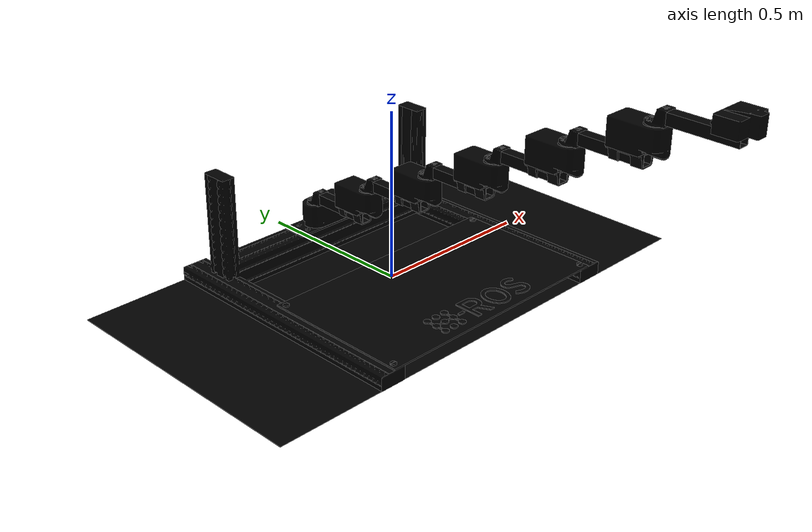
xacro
<?xml version="1.0"?>
<robot name="scara_e1_3joints" xmlns:xacro="http://ros.org/wiki/xacro">

  <link name="world">
     <visual>
       <geometry>
         <box size="1.5 0.8 0.001" />
       </geometry>
       <origin rpy="0 0 0" xyz="0 0 0"/>
       <material name="Gazebo/Black">
       </material>
     </visual>
  </link>

  <link name="scara_e1_base_link">
    <inertial>
      <origin xyz="8.625E-08 -4.6583E-06 0.03145" rpy="0 0 0" />
      <mass value="0.22652" />
      <inertia ixx="0.00020005" ixy="-4.2442E-10" ixz="-2.9069E-10" iyy="0.00017832" iyz="-3.4402E-08" izz="0.00013478" />
    </inertial>
    <visual>
      <origin xyz="0 0 0" rpy="0 0 0" />
      <geometry>
        <mesh scale="0.001 0.001 0.001" filename="package://scara_e1_description/meshes/scara_e1_base_link.stl" />
      </geometry>
      <material name="Gazebo/Grey">
        <color rgba="0. 0. 0. 1" />
      </material>
    </visual>
    <collision>
      <origin xyz="0 0 0" rpy="0 0 0" />
      <geometry>
        <mesh scale="0.001 0.001 0.001" filename="package://scara_e1_description/meshes/scara_e1_base_link.stl" />
      </geometry>
    </collision>
  </link>

  <link name="scara_e1_metraquilato">
    <inertial>
      <origin xyz="8.625E-08 -4.6583E-06 0.03145" rpy="0 0 0" />
      <mass value="0.22652" />
      <inertia ixx="0.00020005" ixy="-4.2442E-10" ixz="-2.9069E-10" iyy="0.00017832" iyz="-3.4402E-08" izz="0.00013478" />
    </inertial>
    <visual>
      <origin xyz="0 0 0" rpy="0 0 0" />
      <geometry>
        <mesh scale="0.001 0.001 0.001" filename="package://scara_e1_description/meshes/scara_e1_metacrilato.stl" />
      </geometry>
      <material name="Gazebo/Black">
        <color rgba="0. 0. 0. 1" />
      </material>
    </visual>
    <collision>
      <origin xyz="0 0 0" rpy="0 0 0" />
      <geometry>
        <mesh scale="0.001 0.001 0.001" filename="package://scara_e1_description/meshes/scara_e1_metacrilato.stl" />
      </geometry>
    </collision>
  </link>

  <link name="scara_e1_hros_logo">
    <inertial>
      <origin xyz="8.625E-08 -4.6583E-06 0.03145" rpy="0 0 0" />
      <mass value="0.22652" />
      <inertia ixx="0.00020005" ixy="-4.2442E-10" ixz="-2.9069E-10" iyy="0.00017832" iyz="-3.4402E-08" izz="0.00013478" />
    </inertial>
    <visual>
      <origin xyz="0 0 0" rpy="0 0 0" />
      <geometry>
        <mesh scale="0.001 0.001 0.001" filename="package://scara_e1_description/meshes/scara_e1_hros_logo.stl" />
      </geometry>
      <material name="Gazebo/Black">
        <color rgba="0. 0. 0. 1" />
      </material>
    </visual>
    <collision>
      <origin xyz="0 0 0" rpy="0 0 0" />
      <geometry>
        <mesh scale="0.001 0.001 0.001" filename="package://scara_e1_description/meshes/scara_e1_hros_logo.stl" />
      </geometry>
    </collision>
  </link>

  <link name="scara_e1_base_motor">
    <inertial>
      <origin xyz="8.625E-08 -4.6583E-06 0.03145" rpy="0 0 0" />
      <mass value="0.22652" />
      <inertia ixx="0.00020005" ixy="-4.2442E-10" ixz="-2.9069E-10" iyy="0.00017832" iyz="-3.4402E-08" izz="0.00013478" />
    </inertial>
    <visual>
      <origin xyz="0 0 0" rpy="0 0 0" />
      <geometry>
        <mesh scale="0.001 0.001 0.001" filename="package://scara_e1_description/meshes/scara_e1_base_motor.stl" />
      </geometry>
      <material name="Gazebo/Grey">
        <color rgba="0. 0. 0. 1" />
      </material>
    </visual>
    <collision>
      <origin xyz="0 0 0" rpy="0 0 0" />
      <geometry>
        <mesh scale="0.001 0.001 0.001" filename="package://scara_e1_description/meshes/scara_e1_base_motor.stl" />
      </geometry>
    </collision>
  </link>

  <link name="scara_e1_motor1">
    <inertial>
      <origin xyz="8.625E-08 -4.6583E-06 0.03145" rpy="0 0 0" />
      <mass value="0.22652" />
      <inertia ixx="0.00020005" ixy="-4.2442E-10" ixz="-2.9069E-10" iyy="0.00017832" iyz="-3.4402E-08" izz="0.00013478" />
    </inertial>
    <visual>
      <origin xyz="0 0 0" rpy="0 0 0" />
      <geometry>
        <mesh scale="0.001 0.001 0.001" filename="package://scara_e1_description/meshes/HEBImotor_case.stl" />
      </geometry>
      <material name="Gazebo/Red">
        <color rgba="0. 0. 0. 1" />
      </material>
    </visual>
    <collision>
      <origin xyz="0 0 0" rpy="0 0 0" />
      <geometry>
        <mesh scale="0.001 0.001 0.001" filename="package://scara_e1_description/meshes/HEBImotor_case.stl" />
      </geometry>
    </collision>
  </link>

  <link name="scara_e1_motor1_inside">
    <inertial>
      <origin xyz="8.625E-08 -4.6583E-06 0.03145" rpy="0 0 0" />
      <mass value="0.22652" />
      <inertia ixx="0.00020005" ixy="-4.2442E-10" ixz="-2.9069E-10" iyy="0.00017832" iyz="-3.4402E-08" izz="0.00013478" />
    </inertial>
    <visual>
      <origin xyz="0 0 0" rpy="0 0 0" />
      <geometry>
        <mesh scale="0.001 0.001 0.001" filename="package://scara_e1_description/meshes/HEBImotor.stl" />
      </geometry>
      <material name="Gazebo/Red">
        <color rgba="0. 0. 0. 1" />
      </material>
    </visual>
    <collision>
      <origin xyz="0 0 0" rpy="0 0 0" />
      <geometry>
        <mesh scale="0.001 0.001 0.001" filename="package://scara_e1_description/meshes/HEBImotor.stl" />
      </geometry>
    </collision>
  </link>

  <link name="scara_e1_motor1_support">
    <inertial>
      <origin xyz="8.625E-08 -4.6583E-06 0.03145" rpy="0 0 0" />
      <mass value="0.22652" />
      <inertia ixx="0.00020005" ixy="-4.2442E-10" ixz="-2.9069E-10" iyy="0.00017832" iyz="-3.4402E-08" izz="0.00013478" />
    </inertial>
    <visual>
      <origin xyz="0 0 0" rpy="0 0 0" />
      <geometry>
        <mesh scale="0.001 0.001 0.001" filename="package://scara_e1_description/meshes/HEBImotor_support.stl" />
      </geometry>
      <material name="Gazebo/Grey">
        <color rgba="0. 0. 0. 1" />
      </material>
    </visual>
    <collision>
      <origin xyz="0 0 0" rpy="0 0 0" />
      <geometry>
        <mesh scale="0.001 0.001 0.001" filename="package://scara_e1_description/meshes/HEBImotor_support.stl" />
      </geometry>
    </collision>
  </link>

  <link name="scara_e1_bar1">
    <inertial>
      <origin xyz="8.625E-08 -4.6583E-06 0.03145" rpy="0 0 0" />
      <mass value="0.22652" />
      <inertia ixx="0.00020005" ixy="-4.2442E-10" ixz="-2.9069E-10" iyy="0.00017832" iyz="-3.4402E-08" izz="0.00013478" />
    </inertial>
    <visual>
      <origin xyz="0 0 0" rpy="0 0 0" />
      <geometry>
        <mesh scale="0.001 0.001 0.001" filename="package://scara_e1_description/meshes/scara_bar.stl" />
      </geometry>
      <material name="Gazebo/White">
        <color rgba="0. 0. 0. 1" />
      </material>
    </visual>
    <collision>
      <origin xyz="0 0 0" rpy="0 0 0" />
      <geometry>
        <mesh scale="0.001 0.001 0.001" filename="package://scara_e1_description/meshes/scara_bar.stl" />
      </geometry>
    </collision>
  </link>

  <link name="scara_e1_fixbar1">
    <inertial>
      <origin xyz="8.625E-08 -4.6583E-06 0.03145" rpy="0 0 0" />
      <mass value="0.22652" />
      <inertia ixx="0.00020005" ixy="-4.2442E-10" ixz="-2.9069E-10" iyy="0.00017832" iyz="-3.4402E-08" izz="0.00013478" />
    </inertial>
    <visual>
      <origin xyz="0 0 0" rpy="0 0 0" />
      <geometry>
        <mesh scale="0.001 0.001 0.001" filename="package://scara_e1_description/meshes/HEBImotor_fixbar.stl" />
      </geometry>
      <material name="Gazebo/Grey">
        <color rgba="0. 0. 0. 1" />
      </material>
    </visual>
    <collision>
      <origin xyz="0 0 0" rpy="0 0 0" />
      <geometry>
        <mesh scale="0.001 0.001 0.001" filename="package://scara_e1_description/meshes/HEBImotor_fixbar.stl" />
      </geometry>
    </collision>
  </link>

  <link name="scara_e1_motor2">
    <inertial>
      <origin xyz="8.625E-08 -4.6583E-06 0.03145" rpy="0 0 0" />
      <mass value="0.22652" />
      <inertia ixx="0.00020005" ixy="-4.2442E-10" ixz="-2.9069E-10" iyy="0.00017832" iyz="-3.4402E-08" izz="0.00013478" />
    </inertial>
    <visual>
      <origin xyz="0 0 0" rpy="0 0 0" />
      <geometry>
        <mesh scale="0.001 0.001 0.001" filename="package://scara_e1_description/meshes/HEBImotor_case.stl" />
      </geometry>
      <material name="Gazebo/Red">
        <color rgba="0. 0. 0. 1" />
      </material>
    </visual>
    <collision>
      <origin xyz="0 0 0" rpy="0 0 0" />
      <geometry>
        <mesh scale="0.001 0.001 0.001" filename="package://scara_e1_description/meshes/HEBImotor_case.stl" />
      </geometry>
    </collision>
  </link>

  <link name="scara_e1_motor2_inside">
    <inertial>
      <origin xyz="8.625E-08 -4.6583E-06 0.03145" rpy="0 0 0" />
      <mass value="0.22652" />
      <inertia ixx="0.00020005" ixy="-4.2442E-10" ixz="-2.9069E-10" iyy="0.00017832" iyz="-3.4402E-08" izz="0.00013478" />
    </inertial>
    <visual>
      <origin xyz="0 0 0" rpy="0 0 0" />
      <geometry>
        <mesh scale="0.001 0.001 0.001" filename="package://scara_e1_description/meshes/HEBImotor.stl" />
      </geometry>
      <material name="Gazebo/Red">
        <color rgba="0. 0. 0. 1" />
      </material>
    </visual>
    <collision>
      <origin xyz="0 0 0" rpy="0 0 0" />
      <geometry>
        <mesh scale="0.001 0.001 0.001" filename="package://scara_e1_description/meshes/HEBImotor.stl" />
      </geometry>
    </collision>
  </link>

  <link name="scara_e1_motor2_support">
    <inertial>
      <origin xyz="8.625E-08 -4.6583E-06 0.03145" rpy="0 0 0" />
      <mass value="0.22652" />
      <inertia ixx="0.00020005" ixy="-4.2442E-10" ixz="-2.9069E-10" iyy="0.00017832" iyz="-3.4402E-08" izz="0.00013478" />
    </inertial>
    <visual>
      <origin xyz="0 0 0" rpy="0 0 0" />
      <geometry>
        <mesh scale="0.001 0.001 0.001" filename="package://scara_e1_description/meshes/HEBImotor_support.stl" />
      </geometry>
      <material name="Gazebo/Grey">
        <color rgba="0. 0. 0. 1" />
      </material>
    </visual>
    <collision>
      <origin xyz="0 0 0" rpy="0 0 0" />
      <geometry>
        <mesh scale="0.001 0.001 0.001" filename="package://scara_e1_description/meshes/HEBImotor_support.stl" />
      </geometry>
    </collision>
  </link>

  <link name="scara_e1_bar2">
    <inertial>
      <origin xyz="8.625E-08 -4.6583E-06 0.03145" rpy="0 0 0" />
      <mass value="0.22652" />
      <inertia ixx="0.00020005" ixy="-4.2442E-10" ixz="-2.9069E-10" iyy="0.00017832" iyz="-3.4402E-08" izz="0.00013478" />
    </inertial>
    <visual>
      <origin xyz="0 0 0" rpy="0 0 0" />
      <geometry>
        <mesh scale="0.001 0.001 0.001" filename="package://scara_e1_description/meshes/scara_bar.stl" />
      </geometry>
      <material name="Gazebo/White">
        <color rgba="0. 0. 0. 1" />
      </material>
    </visual>
    <collision>
      <origin xyz="0 0 0" rpy="0 0 0" />
      <geometry>
        <mesh scale="0.001 0.001 0.001" filename="package://scara_e1_description/meshes/scara_bar.stl" />
      </geometry>
    </collision>
  </link>

  <link name="scara_e1_fixbar2">
    <inertial>
      <origin xyz="8.625E-08 -4.6583E-06 0.03145" rpy="0 0 0" />
      <mass value="0.22652" />
      <inertia ixx="0.00020005" ixy="-4.2442E-10" ixz="-2.9069E-10" iyy="0.00017832" iyz="-3.4402E-08" izz="0.00013478" />
    </inertial>
    <visual>
      <origin xyz="0 0 0" rpy="0 0 0" />
      <geometry>
        <mesh scale="0.001 0.001 0.001" filename="package://scara_e1_description/meshes/HEBImotor_fixbar.stl" />
      </geometry>
      <material name="Gazebo/Grey">
        <color rgba="0. 0. 0. 1" />
      </material>
    </visual>
    <collision>
      <origin xyz="0 0 0" rpy="0 0 0" />
      <geometry>
        <mesh scale="0.001 0.001 0.001" filename="package://scara_e1_description/meshes/HEBImotor_fixbar.stl" />
      </geometry>
    </collision>
  </link>

  <link name="scara_e1_motor3">
    <inertial>
      <origin xyz="8.625E-08 -4.6583E-06 0.03145" rpy="0 0 0" />
      <mass value="0.22652" />
      <inertia ixx="0.00020005" ixy="-4.2442E-10" ixz="-2.9069E-10" iyy="0.00017832" iyz="-3.4402E-08" izz="0.00013478" />
    </inertial>
    <visual>
      <origin xyz="0 0 0" rpy="0 0 0" />
      <geometry>
        <mesh scale="0.001 0.001 0.001" filename="package://scara_e1_description/meshes/HEBImotor_case.stl" />
      </geometry>
      <material name="Gazebo/Red">
        <color rgba="0. 0. 0. 1" />
      </material>
    </visual>
    <collision>
      <origin xyz="0 0 0" rpy="0 0 0" />
      <geometry>
        <mesh scale="0.001 0.001 0.001" filename="package://scara_e1_description/meshes/HEBImotor_case.stl" />
      </geometry>
    </collision>
  </link>

  <link name="scara_e1_motor3_inside">
    <inertial>
      <origin xyz="8.625E-08 -4.6583E-06 0.03145" rpy="0 0 0" />
      <mass value="0.22652" />
      <inertia ixx="0.00020005" ixy="-4.2442E-10" ixz="-2.9069E-10" iyy="0.00017832" iyz="-3.4402E-08" izz="0.00013478" />
    </inertial>
    <visual>
      <origin xyz="0 0 0" rpy="0 0 0" />
      <geometry>
        <mesh scale="0.001 0.001 0.001" filename="package://scara_e1_description/meshes/HEBImotor.stl" />
      </geometry>
      <material name="Gazebo/Red">
        <color rgba="0. 0. 0. 1" />
      </material>
    </visual>
    <collision>
      <origin xyz="0 0 0" rpy="0 0 0" />
      <geometry>
        <mesh scale="0.001 0.001 0.001" filename="package://scara_e1_description/meshes/HEBImotor.stl" />
      </geometry>
    </collision>
  </link>

  <link name="scara_e1_motor3_support">
    <inertial>
      <origin xyz="8.625E-08 -4.6583E-06 0.03145" rpy="0 0 0" />
      <mass value="0.22652" />
      <inertia ixx="0.00020005" ixy="-4.2442E-10" ixz="-2.9069E-10" iyy="0.00017832" iyz="-3.4402E-08" izz="0.00013478" />
    </inertial>
    <visual>
      <origin xyz="0 0 0" rpy="0 0 0" />
      <geometry>
        <mesh scale="0.001 0.001 0.001" filename="package://scara_e1_description/meshes/HEBImotor_support.stl" />
      </geometry>
      <material name="Gazebo/Grey">
        <color rgba="0. 0. 0. 1" />
      </material>
    </visual>
    <collision>
      <origin xyz="0 0 0" rpy="0 0 0" />
      <geometry>
        <mesh scale="0.001 0.001 0.001" filename="package://scara_e1_description/meshes/HEBImotor_support.stl" />
      </geometry>
    </collision>
  </link>

  <link name="scara_e1_bar3">
    <inertial>
      <origin xyz="8.625E-08 -4.6583E-06 0.03145" rpy="0 0 0" />
      <mass value="0.22652" />
      <inertia ixx="0.00020005" ixy="-4.2442E-10" ixz="-2.9069E-10" iyy="0.00017832" iyz="-3.4402E-08" izz="0.00013478" />
    </inertial>
    <visual>
      <origin xyz="0 0 0" rpy="0 0 0" />
      <geometry>
        <mesh scale="0.001 0.001 0.001" filename="package://scara_e1_description/meshes/scara_bar.stl" />
      </geometry>
      <material name="Gazebo/White">
        <color rgba="0. 0. 0. 1" />
      </material>
    </visual>
    <collision>
      <origin xyz="0 0 0" rpy="0 0 0" />
      <geometry>
        <mesh scale="0.001 0.001 0.001" filename="package://scara_e1_description/meshes/scara_bar.stl" />
      </geometry>
    </collision>
  </link>

  <link name="scara_e1_fixbar3">
    <inertial>
      <origin xyz="8.625E-08 -4.6583E-06 0.03145" rpy="0 0 0" />
      <mass value="0.22652" />
      <inertia ixx="0.00020005" ixy="-4.2442E-10" ixz="-2.9069E-10" iyy="0.00017832" iyz="-3.4402E-08" izz="0.00013478" />
    </inertial>
    <visual>
      <origin xyz="0 0 0" rpy="0 0 0" />
      <geometry>
        <mesh scale="0.001 0.001 0.001" filename="package://scara_e1_description/meshes/HEBImotor_fixbar.stl" />
      </geometry>
      <material name="Gazebo/Grey">
        <color rgba="0. 0. 0. 1" />
      </material>
    </visual>
    <collision>
      <origin xyz="0 0 0" rpy="0 0 0" />
      <geometry>
        <mesh scale="0.001 0.001 0.001" filename="package://scara_e1_description/meshes/HEBImotor_fixbar.stl" />
      </geometry>
    </collision>
  </link>

  <link name="scara_e1_motor4">
    <inertial>
      <origin xyz="8.625E-08 -4.6583E-06 0.03145" rpy="0 0 0" />
      <mass value="0.22652" />
      <inertia ixx="0.00020005" ixy="-4.2442E-10" ixz="-2.9069E-10" iyy="0.00017832" iyz="-3.4402E-08" izz="0.00013478" />
    </inertial>
    <visual>
      <origin xyz="0 0 0" rpy="0 0 0" />
      <geometry>
        <mesh scale="0.001 0.001 0.001" filename="package://scara_e1_description/meshes/HEBImotor_case.stl" />
      </geometry>
      <material name="Gazebo/Red">
        <color rgba="0. 0. 0. 1" />
      </material>
    </visual>
    <collision>
      <origin xyz="0 0 0" rpy="0 0 0" />
      <geometry>
        <mesh scale="0.001 0.001 0.001" filename="package://scara_e1_description/meshes/HEBImotor_case.stl" />
      </geometry>
    </collision>
  </link>

  <link name="scara_e1_motor4_inside">
    <inertial>
      <origin xyz="8.625E-08 -4.6583E-06 0.03145" rpy="0 0 0" />
      <mass value="0.22652" />
      <inertia ixx="0.00020005" ixy="-4.2442E-10" ixz="-2.9069E-10" iyy="0.00017832" iyz="-3.4402E-08" izz="0.00013478" />
    </inertial>
    <visual>
      <origin xyz="0 0 0" rpy="0 0 0" />
      <geometry>
        <mesh scale="0.001 0.001 0.001" filename="package://scara_e1_description/meshes/HEBImotor.stl" />
      </geometry>
      <material name="Gazebo/Red">
        <color rgba="0. 0. 0. 1" />
      </material>
    </visual>
    <collision>
      <origin xyz="0 0 0" rpy="0 0 0" />
      <geometry>
        <mesh scale="0.001 0.001 0.001" filename="package://scara_e1_description/meshes/HEBImotor.stl" />
      </geometry>
    </collision>
  </link>

  <link name="scara_e1_motor4_support">
    <inertial>
      <origin xyz="8.625E-08 -4.6583E-06 0.03145" rpy="0 0 0" />
      <mass value="0.22652" />
      <inertia ixx="0.00020005" ixy="-4.2442E-10" ixz="-2.9069E-10" iyy="0.00017832" iyz="-3.4402E-08" izz="0.00013478" />
    </inertial>
    <visual>
      <origin xyz="0 0 0" rpy="0 0 0" />
      <geometry>
        <mesh scale="0.001 0.001 0.001" filename="package://scara_e1_description/meshes/HEBImotor_support.stl" />
      </geometry>
      <material name="Gazebo/Grey">
        <color rgba="0. 0. 0. 1" />
      </material>
    </visual>
    <collision>
      <origin xyz="0 0 0" rpy="0 0 0" />
      <geometry>
        <mesh scale="0.001 0.001 0.001" filename="package://scara_e1_description/meshes/HEBImotor_support.stl" />
      </geometry>
    </collision>
  </link>

  <link name="scara_e1_bar4">
    <inertial>
      <origin xyz="8.625E-08 -4.6583E-06 0.03145" rpy="0 0 0" />
      <mass value="0.22652" />
      <inertia ixx="0.00020005" ixy="-4.2442E-10" ixz="-2.9069E-10" iyy="0.00017832" iyz="-3.4402E-08" izz="0.00013478" />
    </inertial>
    <visual>
      <origin xyz="0 0 0" rpy="0 0 0" />
      <geometry>
        <mesh scale="0.001 0.001 0.001" filename="package://scara_e1_description/meshes/scara_bar.stl" />
      </geometry>
      <material name="Gazebo/White">
        <color rgba="0. 0. 0. 1" />
      </material>
    </visual>
    <collision>
      <origin xyz="0 0 0" rpy="0 0 0" />
      <geometry>
        <mesh scale="0.001 0.001 0.001" filename="package://scara_e1_description/meshes/scara_bar.stl" />
      </geometry>
    </collision>
  </link>

  <link name="scara_e1_fixbar4">
    <inertial>
      <origin xyz="8.625E-08 -4.6583E-06 0.03145" rpy="0 0 0" />
      <mass value="0.22652" />
      <inertia ixx="0.00020005" ixy="-4.2442E-10" ixz="-2.9069E-10" iyy="0.00017832" iyz="-3.4402E-08" izz="0.00013478" />
    </inertial>
    <visual>
      <origin xyz="0 0 0" rpy="0 0 0" />
      <geometry>
        <mesh scale="0.001 0.001 0.001" filename="package://scara_e1_description/meshes/HEBImotor_fixbar.stl" />
      </geometry>
      <material name="Gazebo/Grey">
        <color rgba="0. 0. 0. 1" />
      </material>
    </visual>
    <collision>
      <origin xyz="0 0 0" rpy="0 0 0" />
      <geometry>
        <mesh scale="0.001 0.001 0.001" filename="package://scara_e1_description/meshes/HEBImotor_fixbar.stl" />
      </geometry>
    </collision>
  </link>

  <link name="scara_e1_motor5">
    <inertial>
      <origin xyz="8.625E-08 -4.6583E-06 0.03145" rpy="0 0 0" />
      <mass value="0.22652" />
      <inertia ixx="0.00020005" ixy="-4.2442E-10" ixz="-2.9069E-10" iyy="0.00017832" iyz="-3.4402E-08" izz="0.00013478" />
    </inertial>
    <visual>
      <origin xyz="0 0 0" rpy="0 0 0" />
      <geometry>
        <mesh scale="0.001 0.001 0.001" filename="package://scara_e1_description/meshes/HEBImotor_case.stl" />
      </geometry>
      <material name="Gazebo/Red">
        <color rgba="0. 0. 0. 1" />
      </material>
    </visual>
    <collision>
      <origin xyz="0 0 0" rpy="0 0 0" />
      <geometry>
        <mesh scale="0.001 0.001 0.001" filename="package://scara_e1_description/meshes/HEBImotor_case.stl" />
      </geometry>
    </collision>
  </link>

  <link name="scara_e1_motor5_inside">
    <inertial>
      <origin xyz="8.625E-08 -4.6583E-06 0.03145" rpy="0 0 0" />
      <mass value="0.22652" />
      <inertia ixx="0.00020005" ixy="-4.2442E-10" ixz="-2.9069E-10" iyy="0.00017832" iyz="-3.4402E-08" izz="0.00013478" />
    </inertial>
    <visual>
      <origin xyz="0 0 0" rpy="0 0 0" />
      <geometry>
        <mesh scale="0.001 0.001 0.001" filename="package://scara_e1_description/meshes/HEBImotor.stl" />
      </geometry>
      <material name="Gazebo/Red">
        <color rgba="0. 0. 0. 1" />
      </material>
    </visual>
    <collision>
      <origin xyz="0 0 0" rpy="0 0 0" />
      <geometry>
        <mesh scale="0.001 0.001 0.001" filename="package://scara_e1_description/meshes/HEBImotor.stl" />
      </geometry>
    </collision>
  </link>

  <link name="scara_e1_motor5_support">
    <inertial>
      <origin xyz="8.625E-08 -4.6583E-06 0.03145" rpy="0 0 0" />
      <mass value="0.22652" />
      <inertia ixx="0.00020005" ixy="-4.2442E-10" ixz="-2.9069E-10" iyy="0.00017832" iyz="-3.4402E-08" izz="0.00013478" />
    </inertial>
    <visual>
      <origin xyz="0 0 0" rpy="0 0 0" />
      <geometry>
        <mesh scale="0.001 0.001 0.001" filename="package://scara_e1_description/meshes/HEBImotor_support.stl" />
      </geometry>
      <material name="Gazebo/Grey">
        <color rgba="0. 0. 0. 1" />
      </material>
    </visual>
    <collision>
      <origin xyz="0 0 0" rpy="0 0 0" />
      <geometry>
        <mesh scale="0.001 0.001 0.001" filename="package://scara_e1_description/meshes/HEBImotor_support.stl" />
      </geometry>
    </collision>
  </link>

  <link name="scara_e1_bar5">
    <inertial>
      <origin xyz="8.625E-08 -4.6583E-06 0.03145" rpy="0 0 0" />
      <mass value="0.22652" />
      <inertia ixx="0.00020005" ixy="-4.2442E-10" ixz="-2.9069E-10" iyy="0.00017832" iyz="-3.4402E-08" izz="0.00013478" />
    </inertial>
    <visual>
      <origin xyz="0 0 0" rpy="0 0 0" />
      <geometry>
        <mesh scale="0.001 0.001 0.001" filename="package://scara_e1_description/meshes/scara_bar.stl" />
      </geometry>
      <material name="Gazebo/White">
        <color rgba="0. 0. 0. 1" />
      </material>
    </visual>
    <collision>
      <origin xyz="0 0 0" rpy="0 0 0" />
      <geometry>
        <mesh scale="0.001 0.001 0.001" filename="package://scara_e1_description/meshes/scara_bar.stl" />
      </geometry>
    </collision>
  </link>

  <link name="scara_e1_fixbar5">
    <inertial>
      <origin xyz="8.625E-08 -4.6583E-06 0.03145" rpy="0 0 0" />
      <mass value="0.22652" />
      <inertia ixx="0.00020005" ixy="-4.2442E-10" ixz="-2.9069E-10" iyy="0.00017832" iyz="-3.4402E-08" izz="0.00013478" />
    </inertial>
    <visual>
      <origin xyz="0 0 0" rpy="0 0 0" />
      <geometry>
        <mesh scale="0.001 0.001 0.001" filename="package://scara_e1_description/meshes/HEBImotor_fixbar.stl" />
      </geometry>
      <material name="Gazebo/Grey">
        <color rgba="0. 0. 0. 1" />
      </material>
    </visual>
    <collision>
      <origin xyz="0 0 0" rpy="0 0 0" />
      <geometry>
        <mesh scale="0.001 0.001 0.001" filename="package://scara_e1_description/meshes/HEBImotor_fixbar.stl" />
      </geometry>
    </collision>
  </link>

  <link name="scara_e1_motor6">
    <inertial>
      <origin xyz="8.625E-08 -4.6583E-06 0.03145" rpy="0 0 0" />
      <mass value="0.22652" />
      <inertia ixx="0.00020005" ixy="-4.2442E-10" ixz="-2.9069E-10" iyy="0.00017832" iyz="-3.4402E-08" izz="0.00013478" />
    </inertial>
    <visual>
      <origin xyz="0 0 0" rpy="0 0 0" />
      <geometry>
        <mesh scale="0.001 0.001 0.001" filename="package://scara_e1_description/meshes/HEBImotor_case.stl" />
      </geometry>
      <material name="Gazebo/Red">
        <color rgba="0. 0. 0. 1" />
      </material>
    </visual>
    <collision>
      <origin xyz="0 0 0" rpy="0 0 0" />
      <geometry>
        <mesh scale="0.001 0.001 0.001" filename="package://scara_e1_description/meshes/HEBImotor_case.stl" />
      </geometry>
    </collision>
  </link>

  <link name="scara_e1_motor6_inside">
    <inertial>
      <origin xyz="8.625E-08 -4.6583E-06 0.03145" rpy="0 0 0" />
      <mass value="0.22652" />
      <inertia ixx="0.00020005" ixy="-4.2442E-10" ixz="-2.9069E-10" iyy="0.00017832" iyz="-3.4402E-08" izz="0.00013478" />
    </inertial>
    <visual>
      <origin xyz="0 0 0" rpy="0 0 0" />
      <geometry>
        <mesh scale="0.001 0.001 0.001" filename="package://scara_e1_description/meshes/HEBImotor.stl" />
      </geometry>
      <material name="Gazebo/Red">
        <color rgba="0. 0. 0. 1" />
      </material>
    </visual>
    <collision>
      <origin xyz="0 0 0" rpy="0 0 0" />
      <geometry>
        <mesh scale="0.001 0.001 0.001" filename="package://scara_e1_description/meshes/HEBImotor.stl" />
      </geometry>
    </collision>
  </link>

  <link name="scara_e1_motor6_support">
    <inertial>
      <origin xyz="8.625E-08 -4.6583E-06 0.03145" rpy="0 0 0" />
      <mass value="0.22652" />
      <inertia ixx="0.00020005" ixy="-4.2442E-10" ixz="-2.9069E-10" iyy="0.00017832" iyz="-3.4402E-08" izz="0.00013478" />
    </inertial>
    <visual>
      <origin xyz="0 0 0" rpy="0 0 0" />
      <geometry>
        <mesh scale="0.001 0.001 0.001" filename="package://scara_e1_description/meshes/HEBImotor_support.stl" />
      </geometry>
      <material name="Gazebo/Grey">
        <color rgba="0. 0. 0. 1" />
      </material>
    </visual>
    <collision>
      <origin xyz="0 0 0" rpy="0 0 0" />
      <geometry>
        <mesh scale="0.001 0.001 0.001" filename="package://scara_e1_description/meshes/HEBImotor_support.stl" />
      </geometry>
    </collision>
  </link>

  <link name="scara_e1_bar6">
    <inertial>
      <origin xyz="8.625E-08 -4.6583E-06 0.03145" rpy="0 0 0" />
      <mass value="0.22652" />
      <inertia ixx="0.00020005" ixy="-4.2442E-10" ixz="-2.9069E-10" iyy="0.00017832" iyz="-3.4402E-08" izz="0.00013478" />
    </inertial>
    <visual>
      <origin xyz="0 0 0" rpy="0 0 0" />
      <geometry>
        <mesh scale="0.001 0.001 0.001" filename="package://scara_e1_description/meshes/scara_bar.stl" />
      </geometry>
      <material name="Gazebo/White">
        <color rgba="0. 0. 0. 1" />
      </material>
    </visual>
    <collision>
      <origin xyz="0 0 0" rpy="0 0 0" />
      <geometry>
        <mesh scale="0.001 0.001 0.001" filename="package://scara_e1_description/meshes/scara_bar.stl" />
      </geometry>
    </collision>
  </link>

  <link name="scara_e1_rangefinder">
    <inertial>
      <origin xyz="8.625E-08 -4.6583E-06 0.03145" rpy="0 0 0" />
      <mass value="0.22652" />
      <inertia ixx="0.00020005" ixy="-4.2442E-10" ixz="-2.9069E-10" iyy="0.00017832" iyz="-3.4402E-08" izz="0.00013478" />
    </inertial>
    <visual>
      <origin xyz="0 0 0" rpy="0 0 0" />
      <geometry>
        <mesh scale="0.001 0.001 0.001" filename="package://scara_e1_description/meshes/scara_e1_rangefinder.stl" />
      </geometry>
      <material name="Gazebo/Blue">
        <color rgba="0. 0. 0. 1" />
      </material>
    </visual>
    <collision>
      <origin xyz="0 0 0" rpy="0 0 0" />
      <geometry>
        <mesh scale="0.001 0.001 0.001" filename="package://scara_e1_description/meshes/scara_e1_rangefinder.stl" />
      </geometry>
    </collision>
  </link>

  <link name="ee_link"/>

  <joint name="world_to_base_joint" type="fixed">
    <origin xyz="0 0 0" rpy="0 0 -1.57"/>
    <parent link="world"/>
    <child link="scara_e1_base_link"/>
  </joint>

  <joint name="logo_joint" type="fixed">
    <origin xyz="0 -0.332 0.045" rpy="0 0 -1.57"/>
    <parent link="world"/>
    <child link="scara_e1_hros_logo"/>
  </joint>

  <joint name="base_to_metraquilato_joint" type="fixed">
    <origin xyz="0 0 0" rpy="0 0 -1.57"/>
    <parent link="world"/>
    <child link="scara_e1_metraquilato"/>
  </joint>

  <joint name="base_to_base_motor_joint" type="fixed">
    <origin xyz="-0.285 0 0.08" rpy="0 0 1.57"/>
    <parent link="scara_e1_base_link"/>
    <child link="scara_e1_base_motor"/>
  </joint>

  <joint name="base_to_motor1_joint" type="fixed">
    <origin xyz="0 0. 0" rpy="0 0 0"/>
    <parent link="scara_e1_base_motor"/>
    <child link="scara_e1_motor1"/>
  </joint>

  <joint name="base_to_motor1_inside_joint" type="fixed">
    <origin xyz="0 0. 0" rpy="0 0 0"/>
    <parent link="scara_e1_motor1"/>
    <child link="scara_e1_motor1_inside"/>
  </joint>

  <joint name="motor1" type="revolute">
    <origin xyz="-0.0313 0 0.0702" rpy="0 0 1.57" />
    <parent link="scara_e1_motor1_inside" />
    <child link="scara_e1_motor1_support" />
    <axis xyz="0 0 1" />
    <limit lower="-3.1416" upper="3.1416"  velocity="10.0" effort="10" />
    <dynamics damping="0" friction="0"/>
  </joint>

  <joint name="base_to_bar1_joint" type="fixed">
    <origin xyz="-0.1155 0. 0.0240" rpy="0 0 0"/>
    <parent link="scara_e1_motor1_support"/>
    <child link="scara_e1_bar1"/>
  </joint>

  <joint name="scara_e1_fixbar1_joint" type="fixed">
    <origin xyz="-0.0783 0. 0.0180" rpy="0 0 3.14"/>
    <parent link="scara_e1_bar1"/>
    <child link="scara_e1_fixbar1"/>
  </joint>

  <joint name="base_to_motor2_joint" type="fixed">
    <origin xyz="0 0. 0" rpy="0 0 3.1416"/>
    <parent link="scara_e1_fixbar1"/>
    <child link="scara_e1_motor2"/>
  </joint>

  <joint name="base_to_motor2_inside_joint" type="fixed">
    <origin xyz="0 0. 0" rpy="0 0 0"/>
    <parent link="scara_e1_motor2"/>
    <child link="scara_e1_motor2_inside"/>
  </joint>

  <joint name="motor2" type="revolute">
    <origin xyz="-0.0313 0 0.0702" rpy="0 0 0" />
    <parent link="scara_e1_motor2_inside" />
    <child link="scara_e1_motor2_support" />
    <axis xyz="0 0 1" />
    <limit lower="-3.1416" upper="3.1416"  velocity="10.0" effort="10" />
    <dynamics damping="0" friction="0"/>
  </joint>

  <joint name="base_to_bar2_joint" type="fixed">
    <origin xyz="-0.1155 0. 0.0240" rpy="0 0 0"/>
    <parent link="scara_e1_motor2_support"/>
    <child link="scara_e1_bar2"/>
  </joint>

  <joint name="scara_e1_fixbar2_joint" type="fixed">
    <origin xyz="-0.0783 0. 0.0180" rpy="0 0 3.14"/>
    <parent link="scara_e1_bar2"/>
    <child link="scara_e1_fixbar2"/>
  </joint>

  <joint name="base_to_motor3_joint" type="fixed">
    <origin xyz="0 0. 0" rpy="0 0 3.1416"/>
    <parent link="scara_e1_fixbar2"/>
    <child link="scara_e1_motor3"/>
  </joint>

  <joint name="base_to_motor3_inside_joint" type="fixed">
    <origin xyz="0 0. 0" rpy="0 0 0"/>
    <parent link="scara_e1_motor3"/>
    <child link="scara_e1_motor3_inside"/>
  </joint>

  <joint name="motor3" type="revolute">
    <origin xyz="-0.0313 0 0.0702" rpy="0 0 0" />
    <parent link="scara_e1_motor3_inside" />
    <child link="scara_e1_motor3_support" />
    <axis xyz="0 0 1" />
    <limit lower="-3.1416" upper="3.1416"  velocity="10.0" effort="10" />
    <dynamics damping="0" friction="0"/>
  </joint>

  <joint name="base_to_bar3_joint" type="fixed">
    <origin xyz="-0.1155 0. 0.0240" rpy="0 0 0"/>
    <parent link="scara_e1_motor3_support"/>
    <child link="scara_e1_bar3"/>
  </joint>

  <joint name="scara_e1_fixbar3_joint" type="fixed">
    <origin xyz="-0.0783 0. 0.0180" rpy="0 0 3.14"/>
    <parent link="scara_e1_bar3"/>
    <child link="scara_e1_fixbar3"/>
  </joint>

  <joint name="base_to_motor4_joint" type="fixed">
    <origin xyz="0 0. 0" rpy="0 0 3.1416"/>
    <parent link="scara_e1_fixbar3"/>
    <child link="scara_e1_motor4"/>
  </joint>

  <joint name="base_to_motor4_inside_joint" type="fixed">
    <origin xyz="0 0. 0" rpy="0 0 0"/>
    <parent link="scara_e1_motor4"/>
    <child link="scara_e1_motor4_inside"/>
  </joint>

  <joint name="motor4" type="revolute">
    <origin xyz="-0.0313 0 0.0702" rpy="0 0 0" />
    <parent link="scara_e1_motor4_inside" />
    <child link="scara_e1_motor4_support" />
    <axis xyz="0 0 1" />
    <limit lower="-3.1416" upper="3.1416"  velocity="10.0" effort="10" />
    <dynamics damping="0" friction="0"/>
  </joint>

  <joint name="base_to_bar4_joint" type="fixed">
    <origin xyz="-0.1155 0. 0.0240" rpy="0 0 0"/>
    <parent link="scara_e1_motor4_support"/>
    <child link="scara_e1_bar4"/>
  </joint>

  <joint name="scara_e1_fixbar4_joint" type="fixed">
    <origin xyz="-0.0783 0. 0.0180" rpy="0 0 3.14"/>
    <parent link="scara_e1_bar4"/>
    <child link="scara_e1_fixbar4"/>
  </joint>

  <joint name="base_to_motor5_joint" type="fixed">
    <origin xyz="0 0. 0" rpy="0 0 3.1416"/>
    <parent link="scara_e1_fixbar4"/>
    <child link="scara_e1_motor5"/>
  </joint>

  <joint name="base_to_motor5_inside_joint" type="fixed">
    <origin xyz="0 0. 0" rpy="0 0 0"/>
    <parent link="scara_e1_motor5"/>
    <child link="scara_e1_motor5_inside"/>
  </joint>

  <joint name="motor5" type="revolute">
    <origin xyz="-0.0313 0 0.0702" rpy="0 0 0" />
    <parent link="scara_e1_motor5_inside" />
    <child link="scara_e1_motor5_support" />
    <axis xyz="0 0 1" />
    <limit lower="-3.1416" upper="3.1416"  velocity="10.0" effort="10" />
    <dynamics damping="0" friction="0"/>
  </joint>

  <joint name="base_to_bar5_joint" type="fixed">
    <origin xyz="-0.1155 0. 0.0240" rpy="0 0 0"/>
    <parent link="scara_e1_motor5_support"/>
    <child link="scara_e1_bar5"/>
  </joint>

  <joint name="scara_e1_fixbar5_joint" type="fixed">
    <origin xyz="-0.0783 0. 0.0180" rpy="0 0 3.14"/>
    <parent link="scara_e1_bar5"/>
    <child link="scara_e1_fixbar5"/>
  </joint>

  <joint name="base_to_motor6_joint" type="fixed">
    <origin xyz="0 0. 0" rpy="0 0 3.1416"/>
    <parent link="scara_e1_fixbar5"/>
    <child link="scara_e1_motor6"/>
  </joint>

  <joint name="base_to_motor6_inside_joint" type="fixed">
    <origin xyz="0 0. 0" rpy="0 0 0"/>
    <parent link="scara_e1_motor6"/>
    <child link="scara_e1_motor6_inside"/>
  </joint>

  <joint name="motor6" type="revolute">
    <origin xyz="-0.0313 0 0.0702" rpy="0 0 0" />
    <parent link="scara_e1_motor6_inside" />
    <child link="scara_e1_motor6_support" />
    <axis xyz="0 0 1" />
    <limit lower="-3.1416" upper="3.1416"  velocity="10.0" effort="10" />
    <dynamics damping="0" friction="0"/>
  </joint>

  <joint name="base_to_bar6_joint" type="fixed">
    <origin xyz="-0.1155 0. 0.0240" rpy="0 0 0"/>
    <parent link="scara_e1_motor6_support"/>
    <child link="scara_e1_bar6"/>
  </joint>

  <joint name="rangefinder_joint" type="fixed">
    <origin xyz="-0.083 0 0.0405119" rpy="0 0 3.1416"/>
    <parent link="scara_e1_bar6"/>
    <child link="scara_e1_rangefinder"/>
  </joint>

  <joint name="ee_link_joint" type="fixed">
    <origin xyz="-0.245 0 0" rpy="0 0 0"/>
    <parent link="scara_e1_motor6_support"/>
    <child link="ee_link"/>
  </joint>

  <transmission name="base_to_motor1_inside_support_trans">
    <type>transmission_interface/SimpleTransmission</type>
    <joint name="motor1">
      <hardwareInterface>PositionJointInterface</hardwareInterface>
    </joint>
    <actuator name="motor1_motor">
      <mechanicalReduction>1</mechanicalReduction>
    </actuator>
  </transmission>

  <transmission name="base_to_motor2_inside_support_trans">
    <type>transmission_interface/SimpleTransmission</type>
    <joint name="motor2">
      <hardwareInterface>PositionJointInterface</hardwareInterface>
    </joint>
    <actuator name="motor2_motor">
      <mechanicalReduction>1</mechanicalReduction>
    </actuator>
  </transmission>

  <transmission name="base_to_motor3_inside_support_trans">
    <type>transmission_interface/SimpleTransmission</type>
    <joint name="motor3">
      <hardwareInterface>PositionJointInterface</hardwareInterface>
    </joint>
    <actuator name="motor3_motor">
      <mechanicalReduction>1</mechanicalReduction>
    </actuator>
  </transmission>

  <transmission name="base_to_motor4_inside_support_trans">
    <type>transmission_interface/SimpleTransmission</type>
    <joint name="motor4">
      <hardwareInterface>PositionJointInterface</hardwareInterface>
    </joint>
    <actuator name="motor4_motor">
      <mechanicalReduction>1</mechanicalReduction>
    </actuator>
  </transmission>

  <transmission name="base_to_motor5_inside_support_trans">
    <type>transmission_interface/SimpleTransmission</type>
    <joint name="motor5">
      <hardwareInterface>PositionJointInterface</hardwareInterface>
    </joint>
    <actuator name="motor5_motor">
      <mechanicalReduction>1</mechanicalReduction>
    </actuator>
  </transmission>

  <transmission name="base_to_motor6_inside_support_trans">
    <type>transmission_interface/SimpleTransmission</type>
    <joint name="motor6">
      <hardwareInterface>PositionJointInterface</hardwareInterface>
    </joint>
    <actuator name="motor6_motor">
      <mechanicalReduction>1</mechanicalReduction>
    </actuator>
  </transmission>

  <gazebo reference="scara_e1_base_link">
    <material>Gazebo/Grey</material>
    <selfCollide>False</selfCollide>
  </gazebo>

  <gazebo reference="scara_e1_base_motor">
    <material>Gazebo/Grey</material>
    <selfCollide>False</selfCollide>
  </gazebo>

  <gazebo reference="scara_e1_metraquilato">
    <material>Gazebo/Black</material>
    <selfCollide>False</selfCollide>
  </gazebo>

  <gazebo reference="scara_e1_hros_logo">
    <material>Gazebo/Black</material>
    <selfCollide>False</selfCollide>
  </gazebo>

  <gazebo reference="scara_e1_motor1">
    <material>Gazebo/Black</material>
    <selfCollide>False</selfCollide>
  </gazebo>

  <gazebo reference="scara_e1_motor1_inside">
    <material>Gazebo/Red</material>
    <selfCollide>False</selfCollide>
  </gazebo>

  <gazebo reference="scara_e1_motor1_support">
    <material>Gazebo/Grey</material>
    <selfCollide>False</selfCollide>
  </gazebo>

  <gazebo reference="scara_e1_bar1">
    <material>Gazebo/White</material>
    <selfCollide>False</selfCollide>
  </gazebo>

  <gazebo reference="scara_e1_fixbar1">
    <material>Gazebo/White</material>
    <selfCollide>False</selfCollide>
  </gazebo>

  <gazebo reference="scara_e1_motor2">
    <material>Gazebo/Black</material>
    <selfCollide>False</selfCollide>
  </gazebo>

  <gazebo reference="scara_e1_motor2_inside">
    <material>Gazebo/Red</material>
    <selfCollide>False</selfCollide>
  </gazebo>

  <gazebo reference="scara_e1_motor3">
    <material>Gazebo/Black</material>
    <selfCollide>False</selfCollide>
  </gazebo>

  <gazebo reference="scara_e1_motor3_inside">
    <material>Gazebo/Red</material>
    <selfCollide>False</selfCollide>
  </gazebo>

  <gazebo reference="scara_e1_motor3_support">
    <material>Gazebo/Grey</material>
    <selfCollide>False</selfCollide>
  </gazebo>

  <gazebo reference="scara_e1_bar3">
    <material>Gazebo/White</material>
    <selfCollide>False</selfCollide>
  </gazebo>

  <gazebo reference="scara_e1_motor4">
    <material>Gazebo/Black</material>
    <selfCollide>False</selfCollide>
  </gazebo>

  <gazebo reference="scara_e1_motor4_inside">
    <material>Gazebo/Red</material>
    <selfCollide>False</selfCollide>
  </gazebo>

  <gazebo reference="scara_e1_motor4_support">
    <material>Gazebo/Grey</material>
    <selfCollide>False</selfCollide>
  </gazebo>

  <gazebo reference="scara_e1_motor5">
    <material>Gazebo/Black</material>
    <selfCollide>False</selfCollide>
  </gazebo>

  <gazebo reference="scara_e1_motor5_inside">
    <material>Gazebo/Red</material>
    <selfCollide>False</selfCollide>
  </gazebo>

  <gazebo reference="scara_e1_motor5_support">
    <material>Gazebo/Grey</material>
    <selfCollide>False</selfCollide>
  </gazebo>

  <gazebo reference="scara_e1_motor6">
    <material>Gazebo/Black</material>
    <selfCollide>False</selfCollide>
  </gazebo>

  <gazebo reference="scara_e1_motor6_inside">
    <material>Gazebo/Red</material>
    <selfCollide>False</selfCollide>
  </gazebo>

  <gazebo reference="scara_e1_motor6_support">
    <material>Gazebo/Grey</material>
    <selfCollide>False</selfCollide>
  </gazebo>

  <gazebo reference="scara_e1_rangefinder">
    <material>Gazebo/Blue</material>
    <selfCollide>False</selfCollide>
  </gazebo>

  <gazebo>
     <plugin name="gazebo_ros_control" filename="libgazebo_ros_control.so">
       <robotNamespace>/</robotNamespace>
       <robotSimType>gazebo_ros_control/DefaultRobotHWSim</robotSimType>
     </plugin>
  </gazebo>

  <gazebo reference="ee_link">
    <sensor type ="ray" name="scara_e1_rangefinder_sensor">
      <visualize>true</visualize>
      <update_rate>20</update_rate>
      <ray>
        <scan>
          <horizontal>
            <samples>1</samples>
            <resolution>1</resolution>
            <min_angle>-0.17</min_angle>
            <max_angle>0.17</max_angle>
          </horizontal>
          <vertical>
            <samples>40</samples>
            <resolution>1</resolution>
            <min_angle>-1.574</min_angle>
            <max_angle>-1.572</max_angle>
          </vertical>
        </scan>
        <range>
          <min>0</min>
          <max>2</max>
          <resolution>0.01</resolution>
        </range>
      </ray>
      <plugin name="laser" filename="libgazebo_ros_laser.so">
        <topicName>/scan</topicName>
        <frameName>ee_link</frameName>
      </plugin>
    </sensor>
</gazebo>

</robot>
